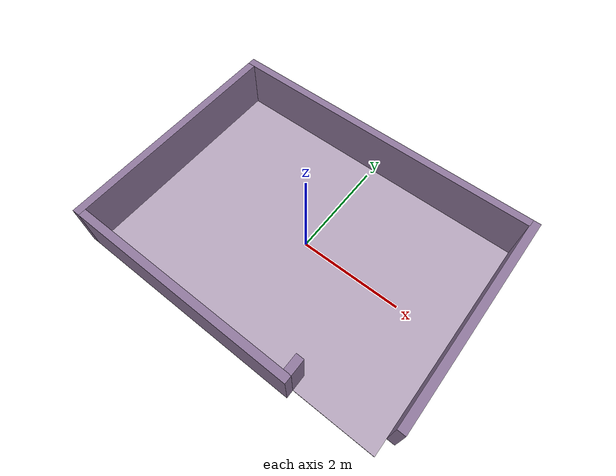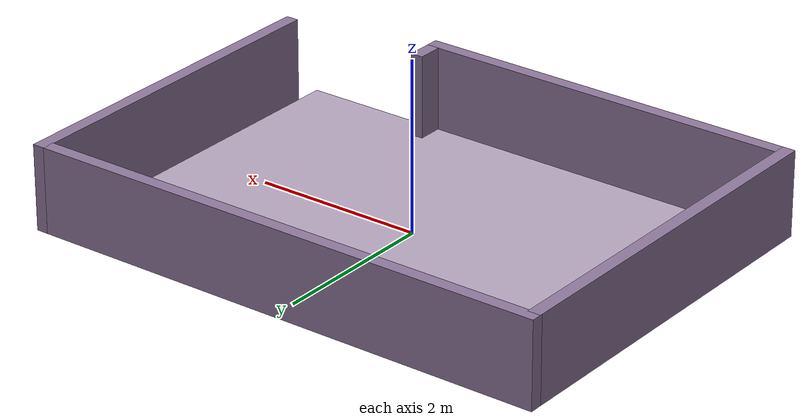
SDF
<?xml version='1.0'?>
<sdf version='1.6'>
  <model name='Workshop'>

    <link name='Wall_10'>
      <collision name='Wall_10_Collision'>
        <geometry>
          <box>
            <size>6.26 0.15 1</size>
          </box>
        </geometry>
        <pose frame=''>0 0 0.5 0 -0 0</pose>
      </collision>
      <visual name='Wall_10_Visual'>
        <pose frame=''>0 0 0.5 0 -0 0</pose>
        <geometry>
          <box>
            <size>6.26 0.15 1</size>
          </box>
        </geometry>
        <material>
          <ambient>0.553 0.463 0.604 1</ambient>
          <diffuse>0.553 0.463 0.604 1</diffuse>
          <specular>0.1 0.1 0.1 1</specular>
        </material>
      </visual>
      <pose frame=''>-0.0745 2.24856 0 0 0 0</pose>
    </link>
    <link name='Wall_11'>
      <collision name='Wall_11_Collision'>
        <geometry>
          <box>
            <size>4.199944 0.15 1</size>
          </box>
        </geometry>
        <pose frame=''>0 0 0.5 0 -0 0</pose>
      </collision>
      <visual name='Wall_11_Visual'>
        <pose frame=''>0 0 0.5 0 -0 0</pose>
        <geometry>
          <box>
            <size>4.199944 0.15 1</size>
          </box>
        </geometry>
        <material>
          <ambient>0.553 0.463 0.604 1</ambient>
          <diffuse>0.553 0.463 0.604 1</diffuse>
          <specular>0.1 0.1 0.1 1</specular>
        </material>
      </visual>
      <pose frame=''>3.12000 0.223500 0 0 0 -1.5708</pose>
    </link>
    <link name='Wall_13'>
      <collision name='Wall_13_Collision'>
        <geometry>
          <box>
            <size>4.557060 0.15 1</size>
          </box>
        </geometry>
        <pose frame=''>0 0 0.5 0 -0 0</pose>
      </collision>
      <visual name='Wall_13_Visual'>
        <pose frame=''>0 0 0.5 0 -0 0</pose>
        <geometry>
          <box>
            <size>4.557060 0.15 1</size>
          </box>
        </geometry>
        <material>
          <ambient>0.553 0.463 0.604 1</ambient>
          <diffuse>0.553 0.463 0.604 1</diffuse>
          <specular>0.1 0.1 0.1 1</specular>
        </material>
      </visual>
      <pose frame=''>-3.129500 -0.075000 0 0 0 -1.5708</pose>
    </link>
    <link name='Wall_15'>
      <collision name='Wall_15_Collision'>
        <geometry>
          <box>
            <size>4.521 0.15 1</size>
          </box>
        </geometry>
        <pose frame=''>0 0 0.5 0 -0 0</pose>
      </collision>
      <visual name='Wall_15_Visual'>
        <pose frame=''>0 0 0.5 0 -0 0</pose>
        <geometry>
          <box>
            <size>4.521 0.15 1</size>
          </box>
        </geometry>
        <material>
          <ambient>0.553 0.463 0.604 1</ambient>
          <diffuse>0.553 0.463 0.604 1</diffuse>
          <specular>0.1 0.1 0.1 1</specular>
        </material>
      </visual>
      <pose frame=''>-0.794000 -2.278500 0 0 -0 0</pose>
    </link>
    <link name='Wall_17'>
      <collision name='Wall_17_Collision'>
        <geometry>
          <box>
            <size>0.302 0.15 1</size>
          </box>
        </geometry>
        <pose frame=''>0 0 0.5 0 -0 0</pose>
      </collision>
      <visual name='Wall_17_Visual'>
        <pose frame=''>0 0 0.5 0 -0 0</pose>
        <geometry>
          <box>
            <size>0.302 0.15 1</size>
          </box>
        </geometry>
        <material>
          <ambient>0.553 0.463 0.604 1</ambient>
          <diffuse>0.553 0.463 0.604 1</diffuse>
          <specular>0.1 0.1 0.1 1</specular>
        </material>
      </visual>
      <pose frame=''>1.392000 -2.057440 0 0 -0 1.5708</pose>
    </link>
    <link name='Wall_19'>
      <collision name='Wall_19_Collision'>
        <geometry>
          <box>
            <size>6.099 4.38 0.013</size>
          </box>
        </geometry>
        <pose frame=''>0 0 0.0065 0 -0 0</pose>
	 <surface>
          <friction>
            <ode>
              <mu>1</mu>
              <mu2>1</mu2>
            </ode>
          </friction>
	<bounce/>
            <contact>
              <ode/>
            </contact>
        </surface>
 	<max_contacts>10</max_contacts>
      </collision>
      <visual name='Wall_19_Visual'>
        <pose frame=''>0 0 0.0065 0 -0 0</pose>
        <geometry>
          <box>
            <size>6.099 4.38 0.013</size>
          </box>
        </geometry>
           <material>
          <ambient>0.702 0.639 0.729 1</ambient>
          <diffuse>0.702 0.639 0.729 1</diffuse>
          <specular>0.05 0.05 0.05 1</specular>
        </material>
      </visual>
      <pose frame=''>-0.005116 -0.013556 0 0 -0 0</pose>
 <velocity_decay>
          <linear>0</linear>
          <angular>0</angular>
        </velocity_decay>
        <self_collide>0</self_collide>
        <kinematic>0</kinematic>
        <gravity>1</gravity>
    </link>
    <static>1</static>
  </model>
</sdf>
